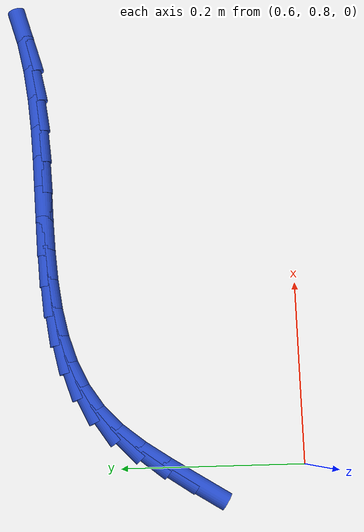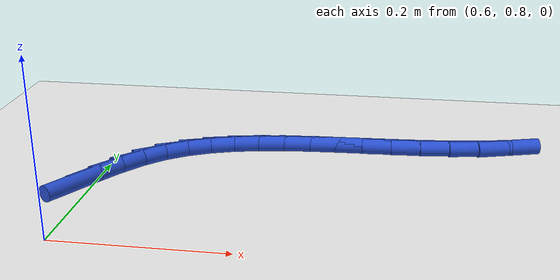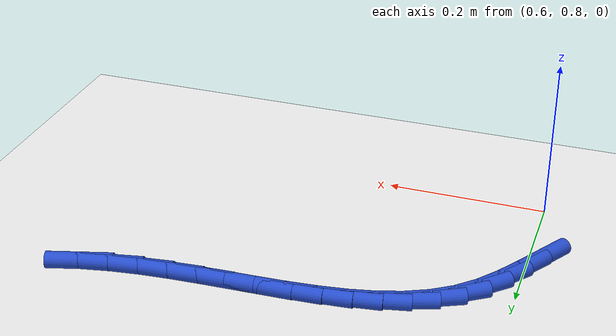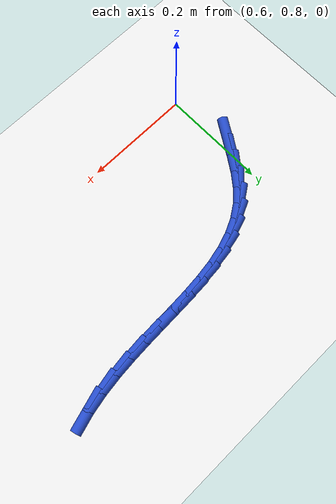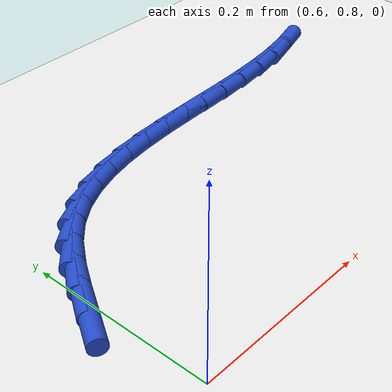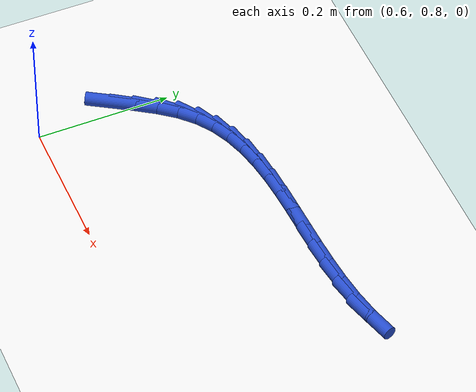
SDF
<sdf version="1.6">
 <world name="default">
  <model name="ground_plane">
   <static>1</static>
   <link name="link">
    <collision name="collision">
     <geometry><plane><normal>0 0 1</normal><size>100 100</size></plane></geometry>
     <surface><friction><ode><mu>100</mu><mu2>50</mu2></ode></friction></surface>
    </collision>
    <visual name="visual">
     <cast_shadows>0</cast_shadows>
     <geometry><plane><normal>0 0 1</normal><size>100 100</size></plane></geometry>
     <material>
      <script><uri>file://media/materials/scripts/gazebo.material</uri><name>Gazebo/WhiteGlow</name></script>
     </material>
    </visual>
   </link>
  </model>
  <model name="line">
   <link name="link_34">
    <pose>0.5839020129180438 0.9205630595053527 0.01 0 1.57 1.018935335468079</pose>
    <collision name="collision">
     <geometry><cylinder><radius>0.01</radius><length>0.08</length></cylinder></geometry>
    </collision>
    <visual name="visual">
     <material>
      <script><name>Gazebo/Blue</name><uri>file://media/materials/scripts/gazebo.material</uri></script>
     </material>
     <geometry><cylinder><radius>0.01</radius><length>0.08</length></cylinder></geometry>
    </visual>
   </link>
   <link name="link_35">
    <pose>0.6019551820777126 0.9498859240298053 0.01 0 1.57 0.9865795366729746</pose>
    <collision name="collision">
     <geometry><cylinder><radius>0.01</radius><length>0.08</length></cylinder></geometry>
    </collision>
    <visual name="visual">
     <material>
      <script><name>Gazebo/Blue</name><uri>file://media/materials/scripts/gazebo.material</uri></script>
     </material>
     <geometry><cylinder><radius>0.01</radius><length>0.08</length></cylinder></geometry>
    </visual>
   </link>
   <link name="link_36">
    <pose>0.6204482755375922 0.97785440187276 0.01 0 1.57 0.9046742494875963</pose>
    <collision name="collision">
     <geometry><cylinder><radius>0.01</radius><length>0.08</length></cylinder></geometry>
    </collision>
    <visual name="visual">
     <material>
      <script><name>Gazebo/Blue</name><uri>file://media/materials/scripts/gazebo.material</uri></script>
     </material>
     <geometry><cylinder><radius>0.01</radius><length>0.08</length></cylinder></geometry>
    </visual>
   </link>
   <link name="link_37">
    <pose>0.6403068467476919 1.0031209969189532 0.01 0 1.57 0.7653309436785538</pose>
    <collision name="collision">
     <geometry><cylinder><radius>0.01</radius><length>0.08</length></cylinder></geometry>
    </collision>
    <visual name="visual">
     <material>
      <script><name>Gazebo/Blue</name><uri>file://media/materials/scripts/gazebo.material</uri></script>
     </material>
     <geometry><cylinder><radius>0.01</radius><length>0.08</length></cylinder></geometry>
    </visual>
   </link>
   <link name="link_38">
    <pose>0.6624327308869226 1.024376225858242 0.01 0 1.57 0.5978618893793848</pose>
    <collision name="collision">
     <geometry><cylinder><radius>0.01</radius><length>0.08</length></cylinder></geometry>
    </collision>
    <visual name="visual">
     <material>
      <script><name>Gazebo/Blue</name><uri>file://media/materials/scripts/gazebo.material</uri></script>
     </material>
     <geometry><cylinder><radius>0.01</radius><length>0.08</length></cylinder></geometry>
    </visual>
   </link>
   <link name="link_39">
    <pose>0.6871621846231105 1.0412170469012147 0.01 0 1.57 0.44583034565960933</pose>
    <collision name="collision">
     <geometry><cylinder><radius>0.01</radius><length>0.08</length></cylinder></geometry>
    </collision>
    <visual name="visual">
     <material>
      <script><name>Gazebo/Blue</name><uri>file://media/materials/scripts/gazebo.material</uri></script>
     </material>
     <geometry><cylinder><radius>0.01</radius><length>0.08</length></cylinder></geometry>
    </visual>
   </link>
   <link name="link_40">
    <pose>0.714254512961217 1.054165087305153 0.01 0 1.57 0.3183253424879754</pose>
    <collision name="collision">
     <geometry><cylinder><radius>0.01</radius><length>0.08</length></cylinder></geometry>
    </collision>
    <visual name="visual">
     <material>
      <script><name>Gazebo/Blue</name><uri>file://media/materials/scripts/gazebo.material</uri></script>
     </material>
     <geometry><cylinder><radius>0.01</radius><length>0.08</length></cylinder></geometry>
    </visual>
   </link>
   <link name="link_41">
    <pose>0.7434430277221029 1.0637836330906427 0.01 0 1.57 0.21742267575342825</pose>
    <collision name="collision">
     <geometry><cylinder><radius>0.01</radius><length>0.08</length></cylinder></geometry>
    </collision>
    <visual name="visual">
     <material>
      <script><name>Gazebo/Blue</name><uri>file://media/materials/scripts/gazebo.material</uri></script>
     </material>
     <geometry><cylinder><radius>0.01</radius><length>0.08</length></cylinder></geometry>
    </visual>
   </link>
   <link name="link_42">
    <pose>0.7744610407266291 1.0706359702782708 0.01 0 1.57 0.14174699650791195</pose>
    <collision name="collision">
     <geometry><cylinder><radius>0.01</radius><length>0.08</length></cylinder></geometry>
    </collision>
    <visual name="visual">
     <material>
      <script><name>Gazebo/Blue</name><uri>file://media/materials/scripts/gazebo.material</uri></script>
     </material>
     <geometry><cylinder><radius>0.01</radius><length>0.08</length></cylinder></geometry>
    </visual>
   </link>
   <link name="link_43">
    <pose>0.8070418637956578 1.0752853848886241 0.01 0 1.57 0.08861177686874201</pose>
    <collision name="collision">
     <geometry><cylinder><radius>0.01</radius><length>0.08</length></cylinder></geometry>
    </collision>
    <visual name="visual">
     <material>
      <script><name>Gazebo/Blue</name><uri>file://media/materials/scripts/gazebo.material</uri></script>
     </material>
     <geometry><cylinder><radius>0.01</radius><length>0.08</length></cylinder></geometry>
    </visual>
   </link>
   <link name="link_44">
    <pose>0.8409188087500497 1.0782951629422888 0.01 0 1.57 0.05533240665738422</pose>
    <collision name="collision">
     <geometry><cylinder><radius>0.01</radius><length>0.08</length></cylinder></geometry>
    </collision>
    <visual name="visual">
     <material>
      <script><name>Gazebo/Blue</name><uri>file://media/materials/scripts/gazebo.material</uri></script>
     </material>
     <geometry><cylinder><radius>0.01</radius><length>0.08</length></cylinder></geometry>
    </visual>
   </link>
   <link name="link_45">
    <pose>0.8758251874106653 1.0802285904598512 0.01 0 1.57 0.039799490561245134</pose>
    <collision name="collision">
     <geometry><cylinder><radius>0.01</radius><length>0.08</length></cylinder></geometry>
    </collision>
    <visual name="visual">
     <material>
      <script><name>Gazebo/Blue</name><uri>file://media/materials/scripts/gazebo.material</uri></script>
     </material>
     <geometry><cylinder><radius>0.01</radius><length>0.08</length></cylinder></geometry>
    </visual>
   </link>
   <link name="link_46">
    <pose>0.9114943115983671 1.0816489534618985 0.01 0 1.57 0.04064060295084018</pose>
    <collision name="collision">
     <geometry><cylinder><radius>0.01</radius><length>0.08</length></cylinder></geometry>
    </collision>
    <visual name="visual">
     <material>
      <script><name>Gazebo/Blue</name><uri>file://media/materials/scripts/gazebo.material</uri></script>
     </material>
     <geometry><cylinder><radius>0.01</radius><length>0.08</length></cylinder></geometry>
    </visual>
   </link>
   <link name="link_47">
    <pose>0.9476594931340157 1.0831195379690173 0.01 0 1.57 0.057201379007144906</pose>
    <collision name="collision">
     <geometry><cylinder><radius>0.01</radius><length>0.08</length></cylinder></geometry>
    </collision>
    <visual name="visual">
     <material>
      <script><name>Gazebo/Blue</name><uri>file://media/materials/scripts/gazebo.material</uri></script>
     </material>
     <geometry><cylinder><radius>0.01</radius><length>0.08</length></cylinder></geometry>
    </visual>
   </link>
   <link name="link_48">
    <pose>0.9840540438384727 1.085203630001794 0.01 0 1.57 0.08945080571969083</pose>
    <collision name="collision">
     <geometry><cylinder><radius>0.01</radius><length>0.08</length></cylinder></geometry>
    </collision>
    <visual name="visual">
     <material>
      <script><name>Gazebo/Blue</name><uri>file://media/materials/scripts/gazebo.material</uri></script>
     </material>
     <geometry><cylinder><radius>0.01</radius><length>0.08</length></cylinder></geometry>
    </visual>
   </link>
   <link name="link_49">
    <pose>1.0204112755325991 1.0884645155808148 0.01 0 1.57 0.13783112486434332</pose>
    <collision name="collision">
     <geometry><cylinder><radius>0.01</radius><length>0.08</length></cylinder></geometry>
    </collision>
    <visual name="visual">
     <material>
      <script><name>Gazebo/Blue</name><uri>file://media/materials/scripts/gazebo.material</uri></script>
     </material>
     <geometry><cylinder><radius>0.01</radius><length>0.08</length></cylinder></geometry>
    </visual>
   </link>
   <link name="link_50">
    <pose>1.0564645000372557 1.0934654807266666 0.01 0 1.57 0.20302099606714247</pose>
    <collision name="collision">
     <geometry><cylinder><radius>0.01</radius><length>0.08</length></cylinder></geometry>
    </collision>
    <visual name="visual">
     <material>
      <script><name>Gazebo/Blue</name><uri>file://media/materials/scripts/gazebo.material</uri></script>
     </material>
     <geometry><cylinder><radius>0.01</radius><length>0.08</length></cylinder></geometry>
    </visual>
   </link>
   <link name="link_51">
    <pose>1.0919470291733047 1.1007698114599362 0.01 0 1.57 0.2855528219127484</pose>
    <collision name="collision">
     <geometry><cylinder><radius>0.01</radius><length>0.08</length></cylinder></geometry>
    </collision>
    <visual name="visual">
     <material>
      <script><name>Gazebo/Blue</name><uri>file://media/materials/scripts/gazebo.material</uri></script>
     </material>
     <geometry><cylinder><radius>0.01</radius><length>0.08</length></cylinder></geometry>
    </visual>
   </link>
  </model>
 </world>
</sdf>
